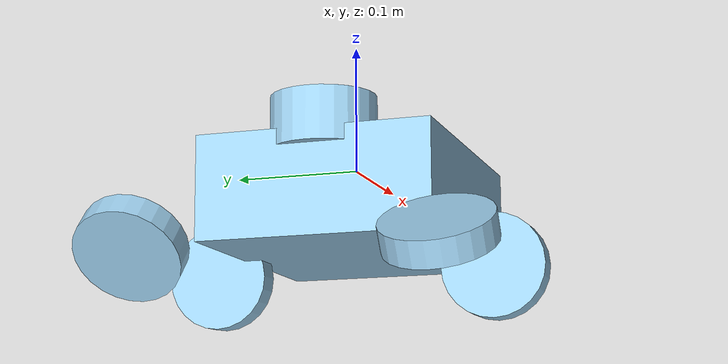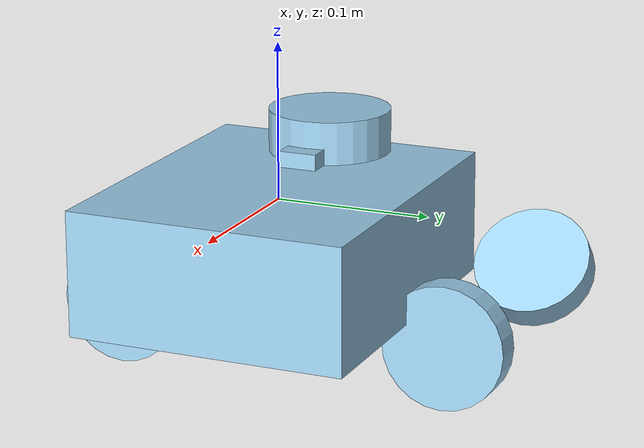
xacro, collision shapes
<?xml version="1.0"?>
<robot xmlns:xacro="http://www.ros.org/wiki/xacro" name="rover">
  <xacro:property name="mesh_dir" value="package://rover_description/meshes"/>
  <material name="body_color">
    <color rgba="0.615686 0.811765 0.929412 1"/>
  </material>

  <!-- Robot body -->
  <link name="base_link"/>
  <link name="main_body">
    <inertial>
      <origin xyz="-0.077841 0.00218182 -0.0645442" rpy="0 0 0"/>
      <mass value="0.00344468"/>
      <inertia ixx="8.31262e-06" ixy="1.21351e-08" ixz="-4.30308e-07"
               iyy="2.83262e-05" iyz="7.87963e-09" izz="3.34903e-05"/>
    </inertial>
    <visual>
      <origin xyz="8.67362e-19 0.00232656 -0.028" rpy="0 0 0"/>
      <geometry>
        <mesh filename="${mesh_dir}/59.stl" scale="1 1 1"/>
      </geometry>
      <material name="body_color"/>
    </visual>
    <collision>
      <origin xyz="0 0 -0.028" rpy="0 0 0"/>
      <geometry>
        <box size="0.22 0.18 0.08"/>
      </geometry>
    </collision>
  </link>

  <joint name="base_to_body" type="fixed">
    <origin xyz="0 0 0" rpy="0 0 0"/>
    <parent link="base_link"/>
    <child link="main_body"/>
  </joint>

  <!-- Wheel macro -->
  <xacro:macro name="wheel" params="name xyz rpy axis inertial_xyz visual_xyz">
    <link name="${name}">
      <inertial>
        <origin xyz="${inertial_xyz}" rpy="0 0 0"/>
        <mass value="0.000126179"/>
        <inertia ixx="1.35094e-07" ixy="0" ixz="4.8002e-11"
                 iyy="7.41754e-08" iyz="0" izz="7.43953e-08"/>
      </inertial>
      <visual>
        <origin xyz="${visual_xyz}" rpy="0 0 0"/>
        <geometry>
          <mesh filename="${mesh_dir}/63.stl" scale="1 1 1"/>
        </geometry>
        <material name="body_color"/>
      </visual>
       <collision>
        <origin xyz="0 0 0" rpy="1.5708 0 0"/>
        <geometry>
          <cylinder radius="0.04" length="0.02"/>
        </geometry>
    </collision>
    </link>
    <joint name="${name}_joint" type="continuous">
      <origin xyz="${xyz}" rpy="${rpy}"/>
      <axis xyz="${axis}"/>
      <parent link="main_body"/>
      <child link="${name}"/>
    </joint>
    <gazebo reference="${name}">
      <mu1>1.0</mu1>
      <mu2>1.0</mu2>
      <kp>100000.0</kp>
      <kd>1.0</kd>
    </gazebo>
  </xacro:macro>

  <!-- Wheels  -->
  <xacro:wheel
      name="wheel_2"
      xyz="-0.165821 -0.109219 -0.0805"
      rpy="0.998696 0 1.5708"
      axis="-1 0 0"
      inertial_xyz="0.0143801 0 -0.00317342"
      visual_xyz="0.001 0 0"/>

  <xacro:wheel
      name="wheel_1"
      xyz="-5.55112e-17 -0.109219 -0.0805"
      rpy="-3.13848 0 1.5708"
      axis="-1 0 0"
      inertial_xyz="0.0143801 0 -0.00317342"
      visual_xyz="0.001 0 0"/>

  <xacro:wheel
      name="wheel"
      xyz="-5.55112e-17 0.113673 -0.0805"
      rpy="0.0299318 0 -1.5708"
      axis="1 0 0"
      inertial_xyz="0.0133801 0 -0.00317342"
      visual_xyz="0 0 0"/>

  <xacro:wheel
      name="wheel_3"
      xyz="-0.165821 0.113673 -0.0805"
      rpy="0.81533 0 -1.5708"
      axis="1 0 0"
      inertial_xyz="0.0133801 0 -0.00317342"
      visual_xyz="0 0 0"/>

  <!-- Lidar sensor link -->
  <link name="lidar_link">
    <inertial>
      <mass value="0.1"/>
      <inertia ixx="0.00007" ixy="0.0" ixz="0.0"
               iyy="0.00007" iyz="0.0"
               izz="0.00006"/>
    </inertial>
    <visual>
      <geometry>
        <cylinder radius="0.04" length="0.04"/>
      </geometry>
      <material name="body_color"/>
    </visual>
    <collision>
      <geometry>
        <cylinder radius="0.04" length="0.04"/>
      </geometry>
    </collision>
  </link>

  <joint name="lidar_joint" type="fixed">
    <parent link="main_body"/>
    <child link="lidar_link"/>
    <origin xyz="-0.08 0.0 0.02" rpy="0 0 0"/>
  </joint>

  <!-- Camera link -->
  <!-- Front facing camera for gem detection -->
  <link name="camera_link">
    <inertial>
      <mass value="0.05"/>
      <inertia ixx="0.00002" ixy="0.0" ixz="0.0"
               iyy="0.00002" iyz="0.0"
               izz="0.00002"/>
    </inertial>
    <visual>
      <geometry>
        <box size="0.025 0.025 0.025"/>
      </geometry>
      <material name="body_color"/>
    </visual>
    <collision>
      <geometry>
        <box size="0.025 0.025 0.025"/>
      </geometry>
    </collision>
  </link>

  <joint name="camera_joint" type="fixed">
    <parent link="main_body"/>
    <child link="camera_link"/>
    <origin xyz="-0.04 0.0 0.01" rpy="0 0 0"/>
  </joint>

  <!-- gazebo plugins -->

  <!-- Differential drive plugin -->
  <!-- Allows the robot to move by subscribing to /cmd_vel -->
  <gazebo>
    <plugin filename="gz-sim-diff-drive-system"
            name="gz::sim::systems::DiffDrive">
      <left_joint>wheel_2_joint</left_joint>
      <left_joint>wheel_3_joint</left_joint>
      <right_joint>wheel_1_joint</right_joint>
      <right_joint>wheel_joint</right_joint>
      <wheel_separation>0.22</wheel_separation>
      <wheel_radius>0.04</wheel_radius>
      <max_linear_velocity>0.5</max_linear_velocity>
      <max_angular_velocity>1.0</max_angular_velocity>
      <max_linear_acceleration>1.0</max_linear_acceleration>
      <topic>cmd_vel</topic>
      <odom_topic>odom</odom_topic>
      <frame_id>odom</frame_id>
      <child_frame_id>base_link</child_frame_id>
    </plugin>
  </gazebo>

  <!-- Joint state publisher plugin -->
  <!-- Publishes the state of all joints -->
  <gazebo>
    <plugin filename="gz-sim-joint-state-publisher-system"
            name="gz::sim::systems::JointStatePublisher">
            <topic>/joint_states</topic>
    </plugin>
  </gazebo>

  <!-- LIDAR sensor plugin -->
  <!-- Gives the robot 360 degree wall detection -->
  <gazebo reference="lidar_link">
    <sensor name="lidar" type="gpu_lidar">
      <always_on>true</always_on>
      <visualize>true</visualize>
      <update_rate>10</update_rate>
      <topic>scan</topic>
      <gz_frame_id>lidar_link</gz_frame_id>
      <lidar>
        <scan>
          <horizontal>
            <samples>360</samples>
            <resolution>1</resolution>
            <min_angle>-3.14159</min_angle>
            <max_angle>3.14159</max_angle>
          </horizontal>
        </scan>
        <range>
          <min>0.10</min>
          <max>10.0</max>
          <resolution>0.01</resolution>
        </range>
      </lidar>
    </sensor>
  </gazebo>

  <!-- Camera sensor plugin -->
  <!-- Front facing camera for gem colour detection -->
  <gazebo reference="camera_link">
    <sensor name="camera" type="camera">
      <always_on>true</always_on>
      <visualize>true</visualize>
      <update_rate>30</update_rate>
      <topic>camera/image_raw</topic>
      <gz_frame_id>camera_link</gz_frame_id>
      <camera>
        <horizontal_fov>1.3962634</horizontal_fov>
        <image>
          <width>640</width>
          <height>480</height>
          <format>R8G8B8</format>
        </image>
        <clip>
          <near>0.02</near>
          <far>300</far>
        </clip>
      </camera>
    </sensor>
  </gazebo>

</robot>
